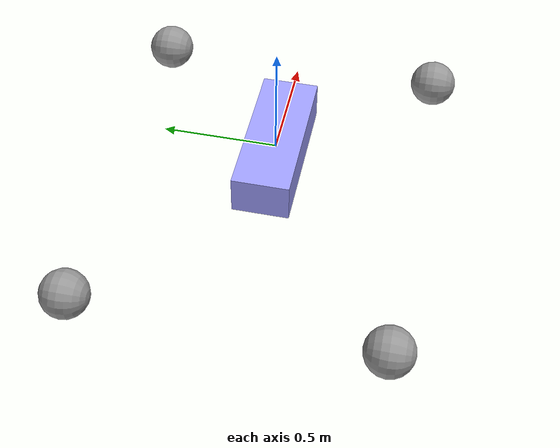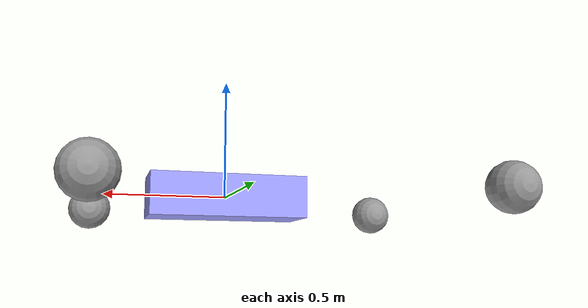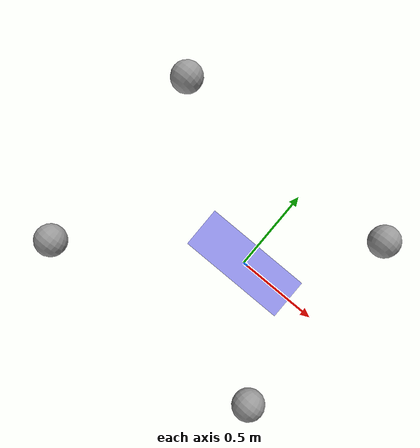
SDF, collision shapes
<sdf version='1.11'>
  <model name='glados'>
    <link name='base_footprint'>
      <inertial>
        <pose>0 0 0 0 0 0</pose>
        <mass>1.14395</mass>
        <inertia>
          <ixx>0.126164</ixx>
          <ixy>0</ixy>
          <ixz>0</ixz>
          <iyy>0.41651899999999997</iyy>
          <iyz>0</iyz>
          <izz>0.481014</izz>
        </inertia>
      </inertial>
      <collision name='base_footprint_fixed_joint_lump__base_link_collision'>
        <pose>0 0 0 0 0 0</pose>
        <geometry>
          <box>
            <size>0.65000000000000002 0.245 0.17499999999999999</size>
          </box>
        </geometry>
      </collision>
      <visual name='base_footprint_fixed_joint_lump__base_link_visual'>
        <pose>0 0 0 0 0 0</pose>
        <geometry>
          <box>
            <size>0.65000000000000002 0.245 0.17499999999999999</size>
          </box>
        </geometry>
        <material>
          <diffuse>0.625 0.625 1 1</diffuse>
          <ambient>0.625 0.625 1 1</ambient>
        </material>
      </visual>
    </link>
    <joint name='front_left_wheel_joint' type='revolute'>
      <pose relative_to='base_footprint'>0.55428299999999997 0.62502899999999995 0 -1.5707963267948959 0 0</pose>
      <parent>base_footprint</parent>
      <child>front_left_wheel</child>
      <axis>
        <xyz>0 0 1</xyz>
        <limit>
          <lower>-1.570796326794897</lower>
          <upper>1.570796326794897</upper>
          <effort>30</effort>
          <velocity>1</velocity>
        </limit>
        <dynamics>
          <spring_reference>0</spring_reference>
          <spring_stiffness>0</spring_stiffness>
        </dynamics>
      </axis>
    </joint>
    <link name='front_left_wheel'>
      <pose relative_to='front_left_wheel_joint'>0 0 0 0 0 0</pose>
      <inertial>
        <pose>0 0 0 0 0 0</pose>
        <mass>2</mass>
        <inertia>
          <ixx>0.044999999999999991</ixx>
          <ixy>0</ixy>
          <ixz>0</ixz>
          <iyy>0.044999999999999991</iyy>
          <iyz>0</iyz>
          <izz>0.089999999999999997</izz>
        </inertia>
      </inertial>
      <collision name='front_left_wheel_collision'>
        <pose>0 0 0 0 0 0</pose>
        <geometry>
          <sphere>
            <radius>0.10000000000000001</radius>
          </sphere>
        </geometry>
        <surface>
          <contact>
            <ode/>
          </contact>
          <friction>
            <ode>
              <mu>1</mu>
              <mu2>0</mu2>
              <fdir1>1 -1 0</fdir1>
            </ode>
          </friction>
        </surface>
      </collision>
      <visual name='front_left_wheel_visual'>
        <pose>0 0 0 1.5707 0 0</pose>
        <geometry>
          <mesh>
            <scale>0.0060000000000000001 0.0060000000000000001 0.0060000000000000001</scale>
            <uri>package://glados_description/models/glados/meshes/mecanum_wheel_left.STL</uri>
          </mesh>
        </geometry>
        <material>
          <script>
            <name>Gazebo/Gray</name>
            <uri>file://media/materials/scripts/gazebo.material</uri>
          </script>
          <diffuse>0.25 0.25 0.25 1</diffuse>
          <ambient>0.25 0.25 0.25 1</ambient>
        </material>
      </visual>
    </link>
    <joint name='front_right_wheel_joint' type='revolute'>
      <pose relative_to='base_footprint'>0.55428200000000005 -0.62502899999999995 0 -1.5707963267948959 0 0</pose>
      <parent>base_footprint</parent>
      <child>front_right_wheel</child>
      <axis>
        <xyz>0 0 1</xyz>
        <limit>
          <lower>-1.570796326794897</lower>
          <upper>1.570796326794897</upper>
          <effort>30</effort>
          <velocity>1</velocity>
        </limit>
        <dynamics>
          <spring_reference>0</spring_reference>
          <spring_stiffness>0</spring_stiffness>
        </dynamics>
      </axis>
    </joint>
    <link name='front_right_wheel'>
      <pose relative_to='front_right_wheel_joint'>0 0 0 0 0 0</pose>
      <inertial>
        <pose>0 0 0 0 0 0</pose>
        <mass>2</mass>
        <inertia>
          <ixx>0.044999999999999991</ixx>
          <ixy>0</ixy>
          <ixz>0</ixz>
          <iyy>0.044999999999999991</iyy>
          <iyz>0</iyz>
          <izz>0.089999999999999997</izz>
        </inertia>
      </inertial>
      <collision name='front_right_wheel_collision'>
        <pose>0 0 0 0 0 0</pose>
        <geometry>
          <sphere>
            <radius>0.10000000000000001</radius>
          </sphere>
        </geometry>
        <surface>
          <contact>
            <ode/>
          </contact>
          <friction>
            <ode>
              <mu>1</mu>
              <mu2>0</mu2>
              <fdir1>1 1 0</fdir1>
            </ode>
          </friction>
        </surface>
      </collision>
      <visual name='front_right_wheel_visual'>
        <pose>0 0 0 1.5707 0 0</pose>
        <geometry>
          <mesh>
            <scale>0.0060000000000000001 0.0060000000000000001 0.0060000000000000001</scale>
            <uri>package://glados_description/models/glados/meshes/mecanum_wheel_right.STL</uri>
          </mesh>
        </geometry>
        <material>
          <script>
            <name>Gazebo/Gray</name>
            <uri>file://media/materials/scripts/gazebo.material</uri>
          </script>
          <diffuse>0.25 0.25 0.25 1</diffuse>
          <ambient>0.25 0.25 0.25 1</ambient>
        </material>
      </visual>
    </link>
    <joint name='rear_left_wheel_joint' type='revolute'>
      <pose relative_to='base_footprint'>-0.95713800000000004 0.62502899999999995 0 -1.5707963267948959 0 0</pose>
      <parent>base_footprint</parent>
      <child>rear_left_wheel</child>
      <axis>
        <xyz>0 0 1</xyz>
        <limit>
          <lower>-1.570796326794897</lower>
          <upper>1.570796326794897</upper>
          <effort>30</effort>
          <velocity>1</velocity>
        </limit>
        <dynamics>
          <spring_reference>0</spring_reference>
          <spring_stiffness>0</spring_stiffness>
        </dynamics>
      </axis>
    </joint>
    <link name='rear_left_wheel'>
      <pose relative_to='rear_left_wheel_joint'>0 0 0 0 0 0</pose>
      <inertial>
        <pose>0 0 0 0 0 0</pose>
        <mass>2</mass>
        <inertia>
          <ixx>0.044999999999999991</ixx>
          <ixy>0</ixy>
          <ixz>0</ixz>
          <iyy>0.044999999999999991</iyy>
          <iyz>0</iyz>
          <izz>0.089999999999999997</izz>
        </inertia>
      </inertial>
      <collision name='rear_left_wheel_collision'>
        <pose>0 0 0 0 0 0</pose>
        <geometry>
          <sphere>
            <radius>0.10000000000000001</radius>
          </sphere>
        </geometry>
        <surface>
          <contact>
            <ode/>
          </contact>
          <friction>
            <ode>
              <mu>1</mu>
              <mu2>0</mu2>
              <fdir1>1 1 0</fdir1>
            </ode>
          </friction>
        </surface>
      </collision>
      <visual name='rear_left_wheel_visual'>
        <pose>0 0 0 1.5707 0 0</pose>
        <geometry>
          <mesh>
            <scale>0.0060000000000000001 0.0060000000000000001 0.0060000000000000001</scale>
            <uri>package://glados_description/models/glados/meshes/mecanum_wheel_right.STL</uri>
          </mesh>
        </geometry>
        <material>
          <script>
            <name>Gazebo/Gray</name>
            <uri>file://media/materials/scripts/gazebo.material</uri>
          </script>
          <diffuse>0.25 0.25 0.25 1</diffuse>
          <ambient>0.25 0.25 0.25 1</ambient>
        </material>
      </visual>
    </link>
    <joint name='rear_right_wheel_joint' type='revolute'>
      <pose relative_to='base_footprint'>-0.95713800000000004 -0.62502899999999995 0 -1.5707963267948959 0 0</pose>
      <parent>base_footprint</parent>
      <child>rear_right_wheel</child>
      <axis>
        <xyz>0 0 1</xyz>
        <limit>
          <lower>-1.570796326794897</lower>
          <upper>1.570796326794897</upper>
          <effort>30</effort>
          <velocity>1</velocity>
        </limit>
        <dynamics>
          <spring_reference>0</spring_reference>
          <spring_stiffness>0</spring_stiffness>
        </dynamics>
      </axis>
    </joint>
    <link name='rear_right_wheel'>
      <pose relative_to='rear_right_wheel_joint'>0 0 0 0 0 0</pose>
      <inertial>
        <pose>0 0 0 0 0 0</pose>
        <mass>2</mass>
        <inertia>
          <ixx>0.044999999999999991</ixx>
          <ixy>0</ixy>
          <ixz>0</ixz>
          <iyy>0.044999999999999991</iyy>
          <iyz>0</iyz>
          <izz>0.089999999999999997</izz>
        </inertia>
      </inertial>
      <collision name='rear_right_wheel_collision'>
        <pose>0 0 0 0 0 0</pose>
        <geometry>
          <sphere>
            <radius>0.10000000000000001</radius>
          </sphere>
        </geometry>
        <surface>
          <contact>
            <ode/>
          </contact>
          <friction>
            <ode>
              <mu>1</mu>
              <mu2>0</mu2>
              <fdir1>1 -1 0</fdir1>
            </ode>
          </friction>
        </surface>
      </collision>
      <visual name='rear_right_wheel_visual'>
        <pose>0 0 0 1.5707 0 0</pose>
        <geometry>
          <mesh>
            <scale>0.0060000000000000001 0.0060000000000000001 0.0060000000000000001</scale>
            <uri>package://glados_description/models/glados/meshes/mecanum_wheel_left.STL</uri>
          </mesh>
        </geometry>
        <material>
          <script>
            <name>Gazebo/Gray</name>
            <uri>file://media/materials/scripts/gazebo.material</uri>
          </script>
          <diffuse>0.25 0.25 0.25 1</diffuse>
          <ambient>0.25 0.25 0.25 1</ambient>
        </material>
      </visual>
    </link>
    <plugin name='gz::sim::systems::MecanumDrive' filename='gz-sim-mecanum-drive-system'>
      <front_left_joint>front_left_wheel_joint</front_left_joint>
      <front_right_joint>front_right_wheel_joint</front_right_joint>
      <back_left_joint>rear_left_wheel_joint</back_left_joint>
      <back_right_joint>rear_right_wheel_joint</back_right_joint>
      <wheel_separation>1.25</wheel_separation>
      <wheelbase>1.511</wheelbase>
      <wheel_radius>0.3</wheel_radius>
      <min_acceleration>-5</min_acceleration>
      <max_acceleration>5</max_acceleration>
    </plugin>
    <frame name='base_link_to_base_footprint' attached_to='base_footprint'>
      <pose>0 0 0 0 0 0</pose>
    </frame>
    <frame name='base_link' attached_to='base_link_to_base_footprint'>
      <pose>0 0 0 0 0 0</pose>
    </frame>
  </model>
</sdf>
